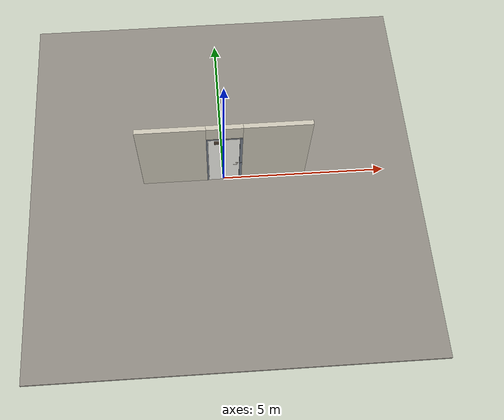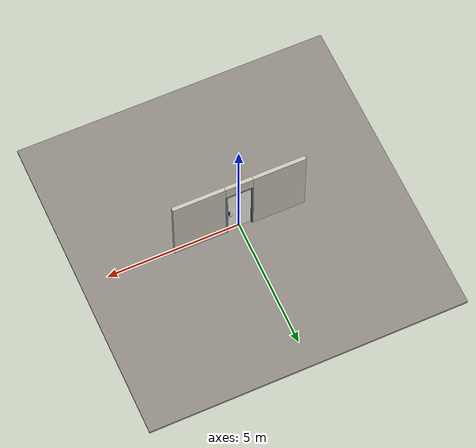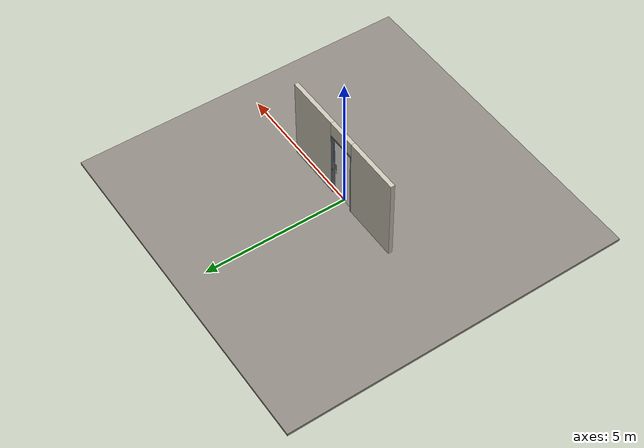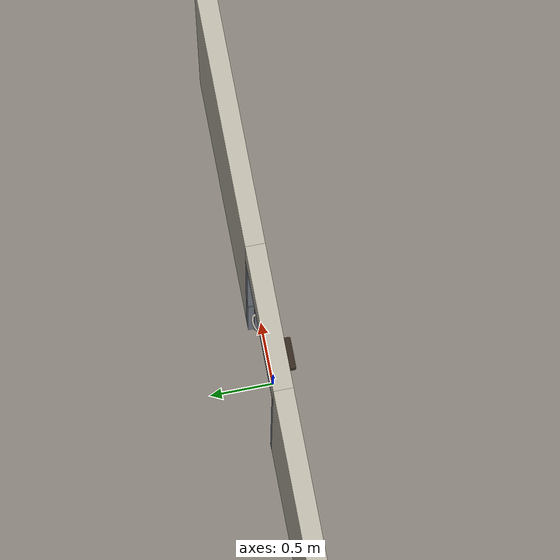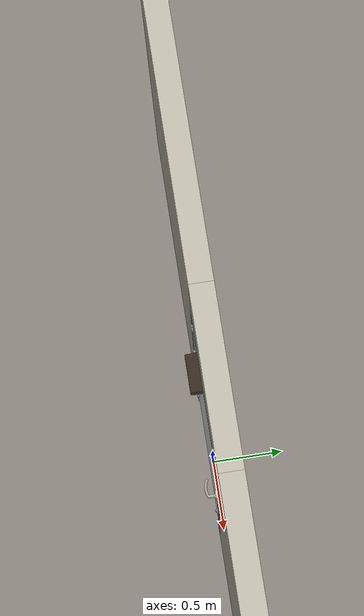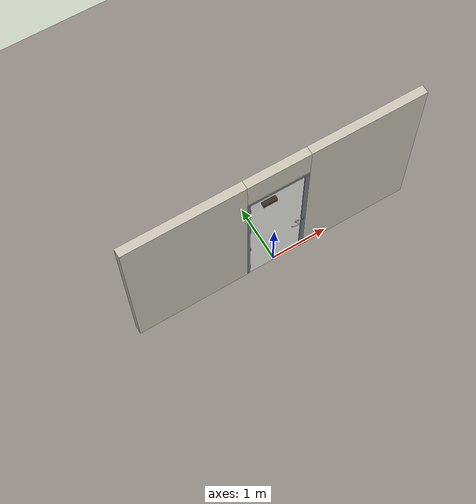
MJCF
<?xml version="1.0" ?>
<mujoco model="db0056_swing_single_simple">
  <compiler angle="radian" meshdir="../../hardware" texturedir="../../textures" autolimits="true" inertiafromgeom="false"/>
  <option timestep="0.002" integrator="implicitfast" cone="elliptic" impratio="10" noslip_iterations="3">
    <flag multiccd="enable"/>
  </option>
  <size memory="16M"/>
  <default>
    <geom condim="4" solref="0.005 1" solimp="0.95 0.99 0.001"/>
    <joint solreflimit="0.005 1" solimplimit="0.95 0.99 0.001"/>
    <tendon solreflimit="0.005 1"/>
    <equality solref="0.002 1"/>
  </default>
  <visual>
    <headlight ambient="0.4 0.4 0.4" diffuse="0.7 0.7 0.7" specular="0.2 0.2 0.2"/>
    <quality shadowsize="4096"/>
    <map znear="0.01" zfar="60"/>
  </visual>
  <asset>
    <mesh name="closer_body_b226fdb10b" file="closer_body_b226fdb10b.obj"/>
    <mesh name="hinge_dcb8da44bf" file="hinge_dcb8da44bf.obj"/>
    <mesh name="hinge_jamb_8e208d7310" file="hinge_jamb_8e208d7310.obj"/>
    <mesh name="keypad_body_91eb8ded3e" file="keypad_body_91eb8ded3e.obj"/>
    <mesh name="lever_a61139b160" file="lever_a61139b160.obj"/>
    <material name="mat_floor" rgba="0.55 0.53 0.5 1" specular="0.2" shininess="0.15" reflectance="0"/>
    <material name="mat_wall" rgba="0.78 0.76 0.7 1" specular="0.2" shininess="0.1" reflectance="0"/>
    <material name="mat_leaf" rgba="0.93 0.93 0.91 1" specular="0.2" shininess="0.57" reflectance="0"/>
    <material name="mat_hinge" rgba="0.65 0.66 0.68 1" specular="0.74" shininess="0.5" reflectance="0.36"/>
    <material name="mat_op_nickel_satin" rgba="0.72 0.7 0.66 1" specular="0.8" shininess="0.65" reflectance="0.4"/>
    <material name="mat_trim" rgba="0.85 0.66 0.3 1" specular="0.8" shininess="0.75" reflectance="0.4"/>
    <material name="mat_keypad" rgba="0.22 0.17 0.13 1" specular="0.8" shininess="0.6" reflectance="0.4"/>
    <material name="mat_key" rgba="0.85 0.85 0.82 1" specular="0.2" shininess="0.5" reflectance="0"/>
    <material name="mat_bolt" rgba="0.85 0.66 0.3 1" specular="0.8" shininess="0.75" reflectance="0.4"/>
    <material name="mat_frame" rgba="0.45 0.48 0.52 1" specular="0.32" shininess="0.6" reflectance="0.08"/>
    <material name="mat_closer" rgba="0.22 0.17 0.13 1" specular="0.8" shininess="0.6" reflectance="0.4"/>
    <material name="mat_sign" rgba="0.75 0.76 0.77 1" specular="0.8" shininess="0.65" reflectance="0.4"/>
    <texture name="skybox" type="skybox" builtin="gradient" rgb1="0.6 0.7 0.85" rgb2="0.9 0.92 0.95" width="256" height="256"/>
  </asset>
  <worldbody>
    <light name="sun" pos="1.5 -2.5 4" dir="-0.3 0.5 -0.8" directional="true" diffuse="0.8 0.8 0.8" specular="0.3 0.3 0.3" castshadow="true"/>
    <light name="fill" pos="-1.5 2.5 3" dir="0.3 -0.5 -0.7" directional="true" diffuse="0.35 0.35 0.4" castshadow="false"/>
    <camera name="robot_view" pos="0 -2.885813 2.043887" xyaxes="1 0 0 0 0.26963 0.962964" fovy="52"/>
    <camera name="far_view" pos="0 2.959812 2.043887" xyaxes="-1 0 0 0 -0.26963 0.962964" fovy="52"/>
    <camera name="iso" pos="2.221337 -2.418163 2.511538" xyaxes="0.741536 0.670913 0 -0.242917 0.268487 0.932151" fovy="46"/>
    <camera name="detail_handle" pos="0.4764 -0.8835 1.32" xyaxes="0.97561 0.219512 0 -0.070934 0.315262 0.94635" fovy="38"/>
    <geom name="floor" type="box" size="6 6 0.05" pos="0 0 -0.05" material="mat_floor" group="0" contype="1" conaffinity="1" friction="0.8 0.005 0.0001" density="2400"/>
    <geom name="wall_left" type="box" size="0.9945 0.0725 1.5255" pos="-1.5055 0.037 1.5255" material="mat_wall" group="0" contype="1" conaffinity="1" friction="0.6 0.005 0.0001" density="800"/>
    <geom name="wall_right" type="box" size="0.9795 0.0725 1.5255" pos="1.5205 0.037 1.5255" material="mat_wall" group="0" contype="1" conaffinity="1" friction="0.6 0.005 0.0001" density="800"/>
    <geom name="wall_header" type="box" size="0.526 0.0725 0.26" pos="0.015 0.037 2.791" material="mat_wall" group="0" contype="1" conaffinity="1" friction="0.6 0.005 0.0001" density="800"/>
    <geom name="hinge_0_jamb" type="mesh" mesh="hinge_jamb_8e208d7310" pos="-0.458 -0.0355 0.259" material="mat_hinge" group="1" contype="0" conaffinity="0" density="7850"/>
    <geom name="hinge_1_jamb" type="mesh" mesh="hinge_jamb_8e208d7310" pos="-0.458 -0.0355 0.928333" material="mat_hinge" group="1" contype="0" conaffinity="0" density="7850"/>
    <geom name="hinge_2_jamb" type="mesh" mesh="hinge_jamb_8e208d7310" pos="-0.458 -0.0355 1.597667" material="mat_hinge" group="1" contype="0" conaffinity="0" density="7850"/>
    <geom name="hinge_3_jamb" type="mesh" mesh="hinge_jamb_8e208d7310" pos="-0.458 -0.0355 2.267" material="mat_hinge" group="1" contype="0" conaffinity="0" density="7850"/>
    <geom name="jamb_hinge" type="box" size="0.025 0.0725 1.2255" pos="-0.486 0.037 1.2255" material="mat_frame" group="0" contype="1" conaffinity="1" friction="0.6 0.005 0.0001" density="300"/>
    <geom name="strike_1040_wall_n" type="box" size="0.04 0.05 0.0183" pos="0.501 0.0595 1.04" material="mat_frame" group="0" contype="1" conaffinity="1" friction="0.6 0.005 0.0001" density="300"/>
    <geom name="strike_1040_wall_p" type="box" size="0.04 0.008 0.0183" pos="0.501 -0.0175 1.04" material="mat_frame" group="0" contype="1" conaffinity="1" friction="0.6 0.005 0.0001" density="300"/>
    <geom name="strike_1040_ramp" type="box" size="0.04 0.018028 0.0183" pos="0.504282 -0.018312 1.04" quat="0.957092 0 0 0.289784" material="mat_frame" group="0" contype="1" conaffinity="1" friction="0.12 0.005 0.0001" density="300"/>
    <geom name="strike_1040_back" type="box" size="0.0285 0.0095 0.0183" pos="0.5125 0 1.04" material="mat_frame" group="0" contype="1" conaffinity="1" friction="0.6 0.005 0.0001" density="300"/>
    <geom name="jamb_strike_0" type="box" size="0.04 0.0725 0.51085" pos="0.501 0.037 0.51085" material="mat_frame" group="0" contype="1" conaffinity="1" friction="0.6 0.005 0.0001" density="300"/>
    <geom name="jamb_strike_1" type="box" size="0.04 0.0725 0.69635" pos="0.501 0.037 1.75465" material="mat_frame" group="0" contype="1" conaffinity="1" friction="0.6 0.005 0.0001" density="300"/>
    <geom name="jamb_head" type="box" size="0.526 0.0725 0.025" pos="0.015 0.037 2.476" material="mat_frame" group="0" contype="1" conaffinity="1" friction="0.6 0.005 0.0001" density="300"/>
    <geom name="head_stud" type="box" size="0.526 0.0725 0.015" pos="0.015 0.037 2.516" material="mat_wall" group="0" contype="1" conaffinity="1" friction="0.6 0.005 0.0001" density="500"/>
    <geom name="stop_hinge" type="box" size="0.0055 0.016 1.2255" pos="-0.4555 0.045 1.2255" material="mat_frame" group="0" contype="1" conaffinity="1" friction="0.6 0.005 0.0001" density="300"/>
    <geom name="stop_strike" type="box" size="0.0055 0.016 1.2255" pos="0.4555 0.045 1.2255" material="mat_frame" group="0" contype="1" conaffinity="1" friction="0.6 0.005 0.0001" density="300"/>
    <geom name="stop_head" type="box" size="0.461 0.016 0.0055" pos="0 0.045 2.4455" material="mat_frame" group="0" contype="1" conaffinity="1" friction="0.6 0.005 0.0001" density="300"/>
    <site name="approach_point" pos="0 -1.5 0" quat="1 0 0 0" size="0.05" rgba="0.2 0.9 0.2 0.5" group="4"/>
    <site name="goal_point" pos="0 1.5 0" quat="1 0 0 0" size="0.05" rgba="0.2 0.9 0.2 0.5" group="4"/>
    <site name="door_plane_center" pos="0 0 1.2255" quat="1 0 0 0" size="0.02" rgba="0.2 0.9 0.2 0.5" group="4"/>
    <body name="leaf" pos="-0.461 0 0">
      <inertial pos="0.44679 -0.004789 1.308584" mass="108.713386" quat="-0.498825 0.488258 0.506931 0.505766" diaginertia="7.478021258 59.018387281 66.37488432"/>
      <joint name="leaf_hinge" type="hinge" axis="0 0 -1" pos="0.003 -0.0355 0" limited="true" range="0 1.570796" damping="10.307281" frictionloss="1.631653" stiffness="29.195383" springref="-2.330505" armature="0.02"/>
      <geom name="leaf_slab" type="box" size="0.457 0.0285 1.219" pos="0.46 0 1.228" material="mat_leaf" group="0" contype="1" conaffinity="1" friction="0.4 0.005 0.0001" density="1"/>
      <geom name="hinge_0" type="mesh" mesh="hinge_dcb8da44bf" pos="0.003 -0.0355 0.259" material="mat_hinge" group="1" contype="0" conaffinity="0" density="7850"/>
      <geom name="hinge_1" type="mesh" mesh="hinge_dcb8da44bf" pos="0.003 -0.0355 0.928333" material="mat_hinge" group="1" contype="0" conaffinity="0" density="7850"/>
      <geom name="hinge_2" type="mesh" mesh="hinge_dcb8da44bf" pos="0.003 -0.0355 1.597667" material="mat_hinge" group="1" contype="0" conaffinity="0" density="7850"/>
      <geom name="hinge_3" type="mesh" mesh="hinge_dcb8da44bf" pos="0.003 -0.0355 2.267" material="mat_hinge" group="1" contype="0" conaffinity="0" density="7850"/>
      <geom name="leaf_keypad_body" type="mesh" mesh="keypad_body_91eb8ded3e" pos="0.847 0.0285 1.18" quat="0 0 0.707107 0.707107" material="mat_keypad" group="0" contype="1" conaffinity="1" friction="0.6 0.005 0.0001" density="2000"/>
      <geom name="leaf_latch_bolt_faceplate" type="box" size="0.0006 0.014 0.0283" pos="0.9164 0 1.04" material="mat_bolt" group="1" contype="0" conaffinity="0" density="8500"/>
      <geom name="closer_body" type="mesh" mesh="closer_body_b226fdb10b" pos="0.3 -0.0285 2.358" quat="0.707107 0.707107 0 0" material="mat_closer" group="1" contype="0" conaffinity="0" density="2000"/>
      <geom name="closer_body_col" type="box" size="0.12 0.04 0.03" pos="0.3 -0.0685 2.358" material="mat_closer" group="3" contype="1" conaffinity="1" rgba="0.8 0.3 0.3 0.25" friction="0.6 0.005 0.0001" density="2000"/>
      <site name="leaf_edge_mid" pos="0.917 0 1.219" quat="1 0 0 0" size="0.02" rgba="0.2 0.9 0.2 0.5" group="4"/>
      <body name="leaf_handle" pos="0.847 0 1.04">
        <inertial pos="-0.025007 -0.063773 0" mass="0.41" quat="-0.235955 0 0 0.971764" diaginertia="0.000156759 0.000717302 0.000791484"/>
        <joint name="leaf_handle_hinge" type="hinge" axis="0 -1 0" limited="true" range="0 0.87" damping="0.208394" frictionloss="0.052" stiffness="1" springref="-0.35" armature="0.01"/>
        <geom name="leaf_handle_lever_n" type="mesh" mesh="lever_a61139b160" pos="0 -0.0285 0" quat="0.707107 0.707107 0 0" material="mat_op_nickel_satin" group="1" contype="0" conaffinity="0" density="3000"/>
        <geom name="leaf_handle_lever_col_n" type="capsule" size="0.008 0.048" pos="-0.056 -0.0835 0" quat="0.707107 0 -0.707107 0" material="mat_op_nickel_satin" group="3" contype="1" conaffinity="1" rgba="0.8 0.3 0.3 0.25" friction="0.7 0.01 0.0001" density="3000"/>
        <geom name="leaf_handle_hub_col_n" type="cylinder" size="0.012 0.022" pos="0 -0.0585 0" quat="0.707107 -0.707107 0 0" material="mat_op_nickel_satin" group="3" contype="1" conaffinity="1" rgba="0.8 0.3 0.3 0.25" friction="0.6 0.005 0.0001" density="3000"/>
        <site name="leaf_handle_grip_n" pos="-0.0896 -0.0835 0" quat="1 0 0 0" size="0.012" rgba="0.2 0.9 0.2 0.5" group="4"/>
      </body>
      <body name="leaf_handle_out" pos="0.847 0 1.04">
        <inertial pos="-0.025007 0.063773 0" mass="0.41" quat="0.235955 0 0 0.971764" diaginertia="0.000156759 0.000717302 0.000791484"/>
        <joint name="leaf_handle_out_hinge" type="hinge" axis="0 -1 0" limited="true" range="0 0.87" damping="0.208382" frictionloss="0.052" stiffness="1" springref="-0.35" armature="0.01"/>
        <geom name="leaf_handle_out_lever_p" type="mesh" mesh="lever_a61139b160" pos="0 0.0285 0" quat="-0.707107 0.707107 0 0" material="mat_op_nickel_satin" group="1" contype="0" conaffinity="0" density="3000"/>
        <geom name="leaf_handle_out_lever_col_p" type="capsule" size="0.008 0.048" pos="-0.056 0.0835 0" quat="0.707107 0 -0.707107 0" material="mat_op_nickel_satin" group="3" contype="1" conaffinity="1" rgba="0.8 0.3 0.3 0.25" friction="0.7 0.01 0.0001" density="3000"/>
        <geom name="leaf_handle_out_hub_col_p" type="cylinder" size="0.012 0.022" pos="0 0.0585 0" quat="0.707107 -0.707107 0 0" material="mat_op_nickel_satin" group="3" contype="1" conaffinity="1" rgba="0.8 0.3 0.3 0.25" friction="0.6 0.005 0.0001" density="3000"/>
        <site name="leaf_handle_out_grip_p" pos="-0.0896 0.0835 0" quat="1 0 0 0" size="0.012" rgba="0.2 0.9 0.2 0.5" group="4"/>
      </body>
      <body name="leaf_latch_bolt" pos="0.917 0 1.04">
        <inertial pos="-0.0055 0 0" mass="0.074627" quat="0.92388 -0.382683 0 0" diaginertia="0.000002271 0.000013255 0.000013255"/>
        <joint name="leaf_latch_bolt_slide" type="slide" axis="-1 0 0" limited="true" range="0 0.019" damping="2" frictionloss="0.3" stiffness="600" springref="-0.01" armature="0.1"/>
        <geom name="leaf_latch_bolt_capsule" type="capsule" size="0.008 0.0165" pos="-0.0055 0 0" quat="0.707107 0 0.707107 0" material="mat_bolt" group="0" contype="1" conaffinity="1" friction="0.2 0.005 0.0001" density="8500"/>
      </body>
    </body>
  </worldbody>
  <tendon>
    <fixed name="leaf_latch_bolt_coupling" limited="true" range="0 10">
      <joint joint="leaf_latch_bolt_slide" coef="1"/>
      <joint joint="leaf_handle_hinge" coef="-0.023457"/>
      <joint joint="leaf_handle_out_hinge" coef="-0.023457"/>
    </fixed>
  </tendon>
  <sensor>
    <jointpos name="leaf_hinge_pos" joint="leaf_hinge"/>
    <jointvel name="leaf_hinge_vel" joint="leaf_hinge"/>
    <jointpos name="leaf_handle_hinge_pos" joint="leaf_handle_hinge"/>
    <jointvel name="leaf_handle_hinge_vel" joint="leaf_handle_hinge"/>
    <jointpos name="leaf_handle_out_hinge_pos" joint="leaf_handle_out_hinge"/>
    <jointvel name="leaf_handle_out_hinge_vel" joint="leaf_handle_out_hinge"/>
    <jointpos name="leaf_latch_bolt_slide_pos" joint="leaf_latch_bolt_slide"/>
    <jointvel name="leaf_latch_bolt_slide_vel" joint="leaf_latch_bolt_slide"/>
  </sensor>
</mujoco>
